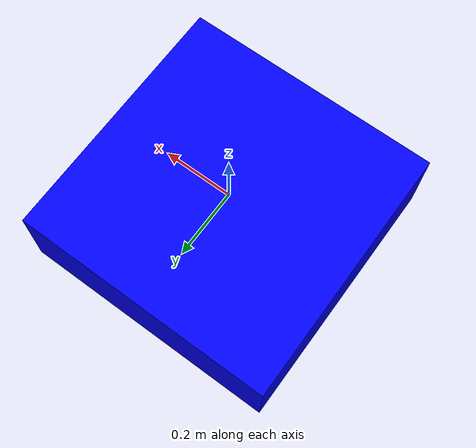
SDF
<?xml version="1.0" ?>
<sdf version="1.7">
  <model name="mobileBase">
    <pose>0 0 0 0 0 0</pose>

    <link name="main">
      <pose>0 0 0 0 0 0</pose>

      <!-- Simple cube to visualize the camera body -->
      <visual name="visual">
        <pose>0 0 -0.1 0 0 0</pose>
        <geometry>
          <box>
            <size>0.75 0.75 0.25</size>
          </box>
        </geometry>
        <material>
          <ambient>0 0 1 1</ambient>
          <diffuse>0 0 1 1</diffuse>
          <specular>0.1 0.1 0.1 1</specular>
        </material>
      </visual>

      <collision name="collision">
        <pose>0 0 -0.1 0 0 0</pose>
        <geometry>
          <box>
            <size>0.75 0.75 0.25</size>
          </box>
        </geometry>
      </collision>

    <!-- Inertial properties -->
      <inertial>
        <mass>0.1</mass>
        <inertia>
          <ixx>100000</ixx>
          <iyy>100000</iyy>
          <izz>100000</izz>
          <ixy>0</ixy>
          <ixz>0</ixz>
          <iyz>0</iyz>
        </inertia>
      </inertial>
    </link>
  </model>
</sdf>
